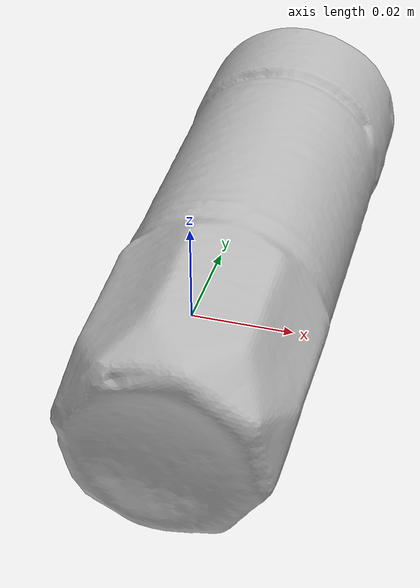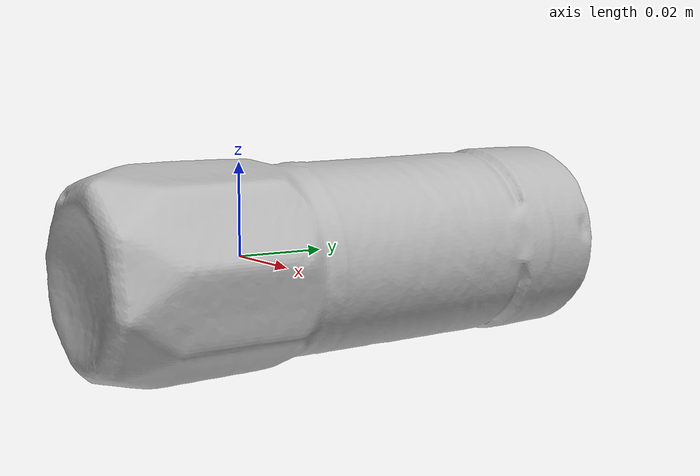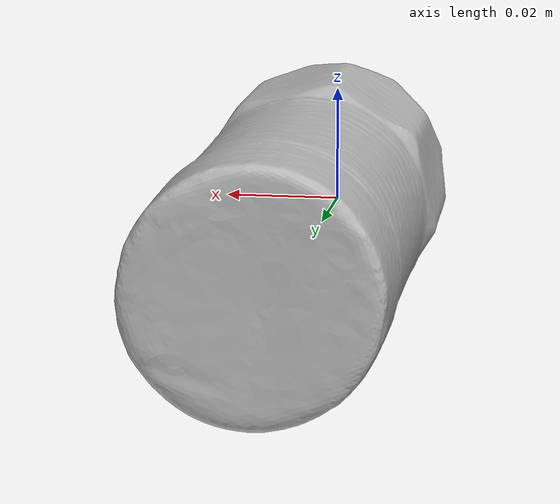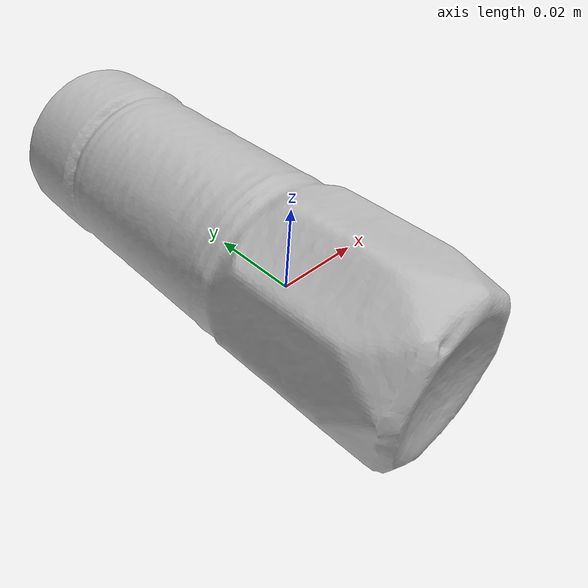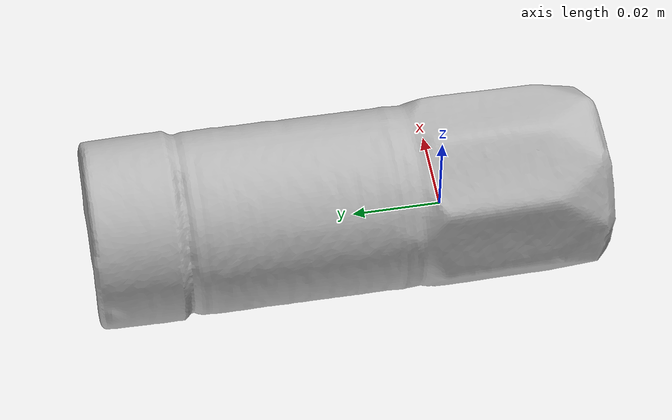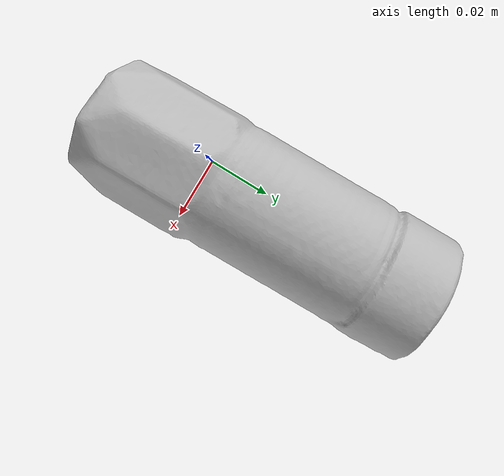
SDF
<?xml version='1.0'?>
<sdf version="1.4">
  <model name="Marjoram">
    <static>false</static>
    <link name="link">
      <inertial>
        <pose>0.004002217377824902 0.021373456470805328 -0.0007429183049455881 -1.6192781791996187 1.1422918301906966 3.1165166895907377</pose>
        <mass>0.01704400124131804</mass>
        <inertia>
          <ixx>2.1100824274936807e-05</ixx>
          <ixy>-3.594238900090286e-21</ixy>
          <ixz>-2.937027276729068e-22</ixz>
          <iyy>2.1081080331408297e-05</iyy>
          <iyz>-1.2825893237431857e-22</iyz>
          <izz>3.9411171001995856e-06</izz>
        </inertia>
      </inertial>
      <collision name="collision">
        <geometry>
          <mesh>
            <!-- Use a downsampled mesh for collisions -->
            <uri>model:///Marjoram/Marjoram_250_collision.obj</uri>
	        </mesh>
        </geometry>
        <surface>
      </surface>
      </collision>
      <visual name="visual">
        <geometry>
          <mesh>
            <uri>model:///Marjoram/Marjoram_25k_tex.obj</uri>
	        </mesh>
        </geometry>
        <material>
          <script>
            <uri>model:///Marjoram/Marjoram.material</uri>
            <name>Marjoram</name>
          </script>
        </material>
      </visual>
    </link>
  </model>
</sdf>
